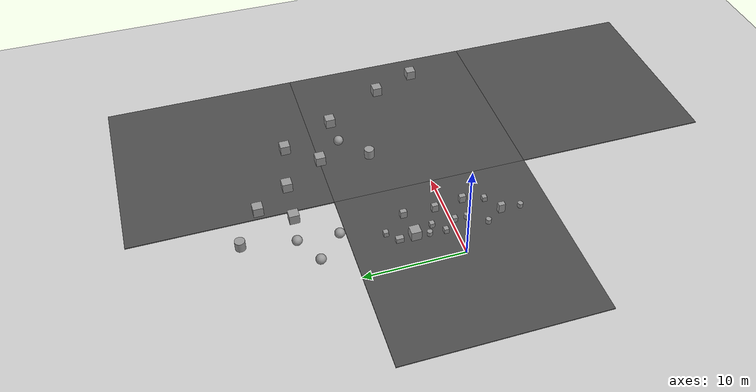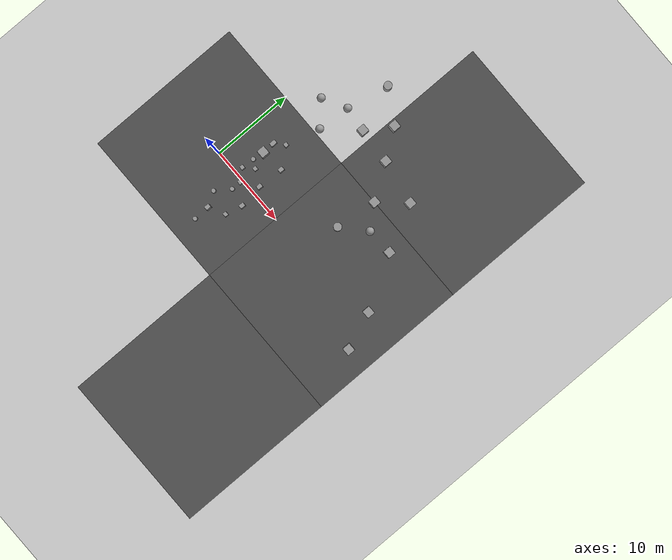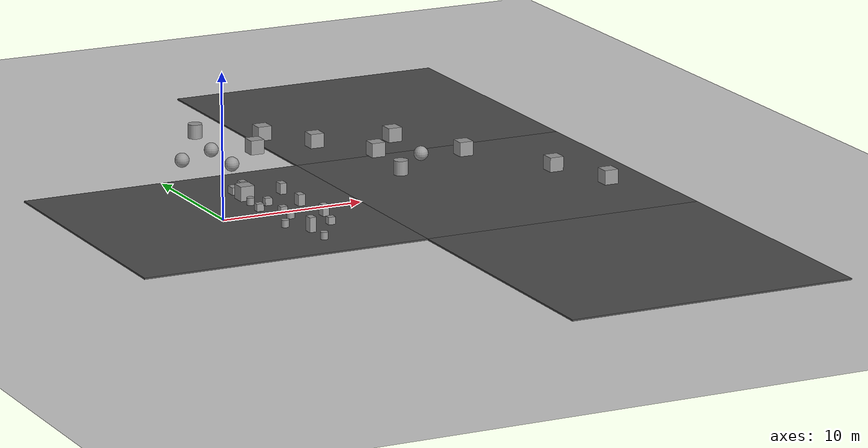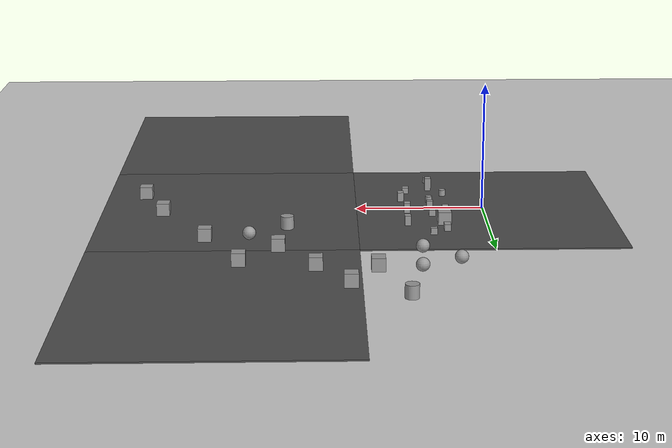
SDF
<sdf version="1.7">
 <world name="default">
  <model name="ground_plane">
   <static>1</static>
   <link name="link">
    <collision name="collision">
     <geometry><plane><normal>0 0 1</normal><size>100 100</size></plane></geometry>
     <surface>
      <contact><collide_bitmask>65535</collide_bitmask></contact>
      <friction><ode><mu>100</mu><mu2>50</mu2></ode></friction>
     </surface>
    </collision>
    <visual name="visual">
     <cast_shadows>0</cast_shadows>
     <geometry><plane><normal>0 0 1</normal><size>100 100</size></plane></geometry>
     <material>
      <script><uri>file://media/materials/scripts/gazebo.material</uri><name>Gazebo/Grey</name></script>
     </material>
    </visual>
   </link>
  </model>
  <model name="asphalt_plane">
   <static>1</static>
   <link name="link">
    <collision name="collision"><geometry><box><size>20 20 0.1</size></box></geometry></collision>
    <visual name="visual">
     <cast_shadows>0</cast_shadows>
     <geometry><box><size>20 20 0.1</size></box></geometry>
     <material>
      <script>
       <uri>model://asphalt_plane/materials/scripts</uri>
       <uri>model://asphalt_plane/materials/textures</uri>
       <name>vrc/asphalt</name>
      </script>
     </material>
    </visual>
   </link>
  </model>
  <model name="asphalt_plane_clone">
   <static>1</static>
   <link name="link">
    <collision name="collision"><geometry><box><size>20 20 0.1</size></box></geometry></collision>
    <visual name="visual">
     <cast_shadows>0</cast_shadows>
     <geometry><box><size>20 20 0.1</size></box></geometry>
     <material>
      <script>
       <uri>model://asphalt_plane/materials/scripts</uri>
       <uri>model://asphalt_plane/materials/textures</uri>
       <name>vrc/asphalt</name>
      </script>
     </material>
    </visual>
   </link>
   <pose>20 0 0 0 -0 0</pose>
  </model>
  <model name="asphalt_plane_clone_0">
   <static>1</static>
   <link name="link">
    <collision name="collision"><geometry><box><size>20 20 0.1</size></box></geometry></collision>
    <visual name="visual">
     <cast_shadows>0</cast_shadows>
     <geometry><box><size>20 20 0.1</size></box></geometry>
     <material>
      <script>
       <uri>model://asphalt_plane/materials/scripts</uri>
       <uri>model://asphalt_plane/materials/textures</uri>
       <name>vrc/asphalt</name>
      </script>
     </material>
    </visual>
   </link>
   <pose>20 -20 0 0 -0 0</pose>
  </model>
  <model name="asphalt_plane_clone_6">
   <static>1</static>
   <link name="link">
    <collision name="collision"><geometry><box><size>20 20 0.1</size></box></geometry></collision>
    <visual name="visual">
     <cast_shadows>0</cast_shadows>
     <geometry><box><size>20 20 0.1</size></box></geometry>
     <material>
      <script>
       <uri>model://asphalt_plane/materials/scripts</uri>
       <uri>model://asphalt_plane/materials/textures</uri>
       <name>vrc/asphalt</name>
      </script>
     </material>
    </visual>
   </link>
   <pose>20 20 0 0 -0 0</pose>
  </model>
  <model name="unit_box">
   <pose>3.3249 3.92529 0.55 0 -0 0</pose>
   <link name="link">
    <inertial>
     <mass>1</mass>
     <inertia>
      <ixx>0.166667</ixx>
      <ixy>0</ixy>
      <ixz>0</ixz>
      <iyy>0.166667</iyy>
      <iyz>0</iyz>
      <izz>0.166667</izz>
     </inertia>
    </inertial>
    <collision name="collision"><geometry><box><size>1 1 1</size></box></geometry></collision>
    <visual name="visual">
     <geometry><box><size>1 1 1</size></box></geometry>
     <material>
      <script><name>Gazebo/Grey</name><uri>file://media/materials/scripts/gazebo.material</uri></script>
     </material>
    </visual>
   </link>
  </model>
  <model name="unit_box_0">
   <pose>4.32444 6.49188 0.301356 0 -0 1e-06</pose>
   <link name="link">
    <inertial>
     <mass>1</mass>
     <inertia>
      <ixx>0.166667</ixx>
      <ixy>0</ixy>
      <ixz>0</ixz>
      <iyy>0.166667</iyy>
      <iyz>0</iyz>
      <izz>0.166667</izz>
     </inertia>
    </inertial>
    <collision name="collision">
     <geometry><box><size>0.495294 0.467832 0.502712</size></box></geometry>
    </collision>
    <visual name="visual">
     <geometry><box><size>0.495294 0.467832 0.502712</size></box></geometry>
     <material>
      <script><name>Gazebo/Grey</name><uri>file://media/materials/scripts/gazebo.material</uri></script>
     </material>
    </visual>
   </link>
  </model>
  <model name="unit_box_0_clone">
   <pose>3.22245 5.47551 0.301351 -1.2e-05 0 2e-06</pose>
   <link name="link">
    <inertial>
     <mass>1</mass>
     <inertia>
      <ixx>0.166667</ixx>
      <ixy>0</ixy>
      <ixz>0</ixz>
      <iyy>0.166667</iyy>
      <iyz>0</iyz>
      <izz>0.166667</izz>
     </inertia>
    </inertial>
    <collision name="collision">
     <geometry><box><size>0.495294 0.766084 0.502712</size></box></geometry>
    </collision>
    <visual name="visual">
     <geometry><box><size>0.495294 0.766084 0.502712</size></box></geometry>
     <material>
      <script><name>Gazebo/Grey</name><uri>file://media/materials/scripts/gazebo.material</uri></script>
     </material>
    </visual>
   </link>
  </model>
  <model name="unit_box_0_clone_2">
   <pose>3.02414 0.969262 0.301356 0 -0 1e-06</pose>
   <link name="link">
    <inertial>
     <mass>1</mass>
     <inertia>
      <ixx>0.166667</ixx>
      <ixy>0</ixy>
      <ixz>0</ixz>
      <iyy>0.166667</iyy>
      <iyz>0</iyz>
      <izz>0.166667</izz>
     </inertia>
    </inertial>
    <collision name="collision">
     <geometry><box><size>0.495294 0.467832 0.502712</size></box></geometry>
    </collision>
    <visual name="visual">
     <geometry><box><size>0.495294 0.467832 0.502712</size></box></geometry>
     <material>
      <script><name>Gazebo/Grey</name><uri>file://media/materials/scripts/gazebo.material</uri></script>
     </material>
    </visual>
   </link>
  </model>
  <model name="unit_box_0_clone_3">
   <pose>4.15818 -0.316674 0.301356 0 -0 1e-06</pose>
   <link name="link">
    <inertial>
     <mass>1</mass>
     <inertia>
      <ixx>0.166667</ixx>
      <ixy>0</ixy>
      <ixz>0</ixz>
      <iyy>0.166667</iyy>
      <iyz>0</iyz>
      <izz>0.166667</izz>
     </inertia>
    </inertial>
    <collision name="collision">
     <geometry><box><size>0.495294 0.467832 0.502712</size></box></geometry>
    </collision>
    <visual name="visual">
     <geometry><box><size>0.495294 0.467832 0.502712</size></box></geometry>
     <material>
      <script><name>Gazebo/Grey</name><uri>file://media/materials/scripts/gazebo.material</uri></script>
     </material>
    </visual>
   </link>
  </model>
  <model name="unit_box_0_clone_4">
   <pose>4.11232 2.00992 0.301356 0 -0 1e-06</pose>
   <link name="link">
    <inertial>
     <mass>1</mass>
     <inertia>
      <ixx>0.166667</ixx>
      <ixy>0</ixy>
      <ixz>0</ixz>
      <iyy>0.166667</iyy>
      <iyz>0</iyz>
      <izz>0.166667</izz>
     </inertia>
    </inertial>
    <collision name="collision">
     <geometry><box><size>0.495294 0.467832 0.502712</size></box></geometry>
    </collision>
    <visual name="visual">
     <geometry><box><size>0.495294 0.467832 0.502712</size></box></geometry>
     <material>
      <script><name>Gazebo/Grey</name><uri>file://media/materials/scripts/gazebo.material</uri></script>
     </material>
    </visual>
   </link>
  </model>
  <model name="unit_cylinder_clone_4">
   <pose>3.12569 2.54543 0.294825 0 -0 0.000307</pose>
   <link name="link">
    <inertial>
     <mass>1</mass>
     <inertia><ixx>0.145833</ixx><ixy>0</ixy><ixz>0</ixz><iyy>0.145833</iyy><iyz>0</iyz><izz>0.125</izz></inertia>
    </inertial>
    <collision name="collision">
     <geometry><cylinder><radius>0.264047</radius><length>0.48967</length></cylinder></geometry>
    </collision>
    <visual name="visual">
     <geometry><cylinder><radius>0.264047</radius><length>0.48967</length></cylinder></geometry>
     <material>
      <script><name>Gazebo/Grey</name><uri>file://media/materials/scripts/gazebo.material</uri></script>
     </material>
    </visual>
   </link>
  </model>
  <model name="unit_cylinder_clone_5">
   <pose>4.1551 -1.53168 0.294836 -2e-06 2e-06 0.000272</pose>
   <link name="link">
    <inertial>
     <mass>1</mass>
     <inertia><ixx>0.145833</ixx><ixy>0</ixy><ixz>0</ixz><iyy>0.145833</iyy><iyz>0</iyz><izz>0.125</izz></inertia>
    </inertial>
    <collision name="collision">
     <geometry><cylinder><radius>0.264047</radius><length>0.48967</length></cylinder></geometry>
    </collision>
    <visual name="visual">
     <geometry><cylinder><radius>0.264047</radius><length>0.48967</length></cylinder></geometry>
     <material>
      <script><name>Gazebo/Grey</name><uri>file://media/materials/scripts/gazebo.material</uri></script>
     </material>
    </visual>
   </link>
  </model>
  <model name="unit_cylinder_clone_6">
   <pose>2.93725 -3.29398 0.294835 0 -0 0.000255</pose>
   <link name="link">
    <inertial>
     <mass>1</mass>
     <inertia><ixx>0.145833</ixx><ixy>0</ixy><ixz>0</ixz><iyy>0.145833</iyy><iyz>0</iyz><izz>0.125</izz></inertia>
    </inertial>
    <collision name="collision">
     <geometry><cylinder><radius>0.264047</radius><length>0.48967</length></cylinder></geometry>
    </collision>
    <visual name="visual">
     <geometry><cylinder><radius>0.264047</radius><length>0.48967</length></cylinder></geometry>
     <material>
      <script><name>Gazebo/Grey</name><uri>file://media/materials/scripts/gazebo.material</uri></script>
     </material>
    </visual>
   </link>
  </model>
  <model name="unit_cylinder_clone_15">
   <pose>4 -7.00001 0.294826 1e-06 -1e-06 0.000277</pose>
   <link name="link">
    <inertial>
     <mass>1</mass>
     <inertia><ixx>0.145833</ixx><ixy>0</ixy><ixz>0</ixz><iyy>0.145833</iyy><iyz>0</iyz><izz>0.125</izz></inertia>
    </inertial>
    <collision name="collision">
     <geometry><cylinder><radius>0.264047</radius><length>0.48967</length></cylinder></geometry>
    </collision>
    <visual name="visual">
     <geometry><cylinder><radius>0.264047</radius><length>0.48967</length></cylinder></geometry>
     <material>
      <script><name>Gazebo/Grey</name><uri>file://media/materials/scripts/gazebo.material</uri></script>
     </material>
    </visual>
   </link>
  </model>
  <model name="unit_box_0_clone_1_clone_2">
   <pose>5.89538 -3.99875 0.301356 0 -0 1e-06</pose>
   <link name="link">
    <inertial>
     <mass>1</mass>
     <inertia>
      <ixx>0.166667</ixx>
      <ixy>0</ixy>
      <ixz>0</ixz>
      <iyy>0.166667</iyy>
      <iyz>0</iyz>
      <izz>0.166667</izz>
     </inertia>
    </inertial>
    <collision name="collision">
     <geometry><box><size>0.495294 0.467832 0.502712</size></box></geometry>
    </collision>
    <visual name="visual">
     <geometry><box><size>0.495294 0.467832 0.502712</size></box></geometry>
     <material>
      <script><name>Gazebo/Grey</name><uri>file://media/materials/scripts/gazebo.material</uri></script>
     </material>
    </visual>
   </link>
  </model>
  <model name="unit_box_3_clone_1">
   <pose>6.15547 4.18849 0.422713 0 -0 0</pose>
   <link name="link">
    <inertial>
     <mass>1</mass>
     <inertia>
      <ixx>0.166667</ixx>
      <ixy>0</ixy>
      <ixz>0</ixz>
      <iyy>0.166667</iyy>
      <iyz>0</iyz>
      <izz>0.166667</izz>
     </inertia>
    </inertial>
    <collision name="collision">
     <geometry><box><size>0.473217 0.637104 0.745427</size></box></geometry>
    </collision>
    <visual name="visual">
     <geometry><box><size>0.473217 0.637104 0.745427</size></box></geometry>
     <material>
      <script><name>Gazebo/Grey</name><uri>file://media/materials/scripts/gazebo.material</uri></script>
     </material>
    </visual>
   </link>
  </model>
  <model name="unit_box_3_clone_3">
   <pose>4 -5 0.55 0 -0 0</pose>
   <link name="link">
    <inertial>
     <mass>1</mass>
     <inertia>
      <ixx>0.166667</ixx>
      <ixy>0</ixy>
      <ixz>0</ixz>
      <iyy>0.166667</iyy>
      <iyz>0</iyz>
      <izz>0.166667</izz>
     </inertia>
    </inertial>
    <collision name="collision"><geometry><box><size>0.473217 0.637104 1</size></box></geometry></collision>
    <visual name="visual">
     <geometry><box><size>0.473217 0.637104 1</size></box></geometry>
     <material>
      <script><name>Gazebo/Grey</name><uri>file://media/materials/scripts/gazebo.material</uri></script>
     </material>
    </visual>
   </link>
  </model>
  <model name="unit_box_3_clone_4">
   <pose>6.40553 -1.89878 0.427812 0 0 -1.8e-05</pose>
   <link name="link">
    <inertial>
     <mass>1</mass>
     <inertia>
      <ixx>0.166667</ixx>
      <ixy>0</ixy>
      <ixz>0</ixz>
      <iyy>0.166667</iyy>
      <iyz>0</iyz>
      <izz>0.166667</izz>
     </inertia>
    </inertial>
    <collision name="collision">
     <geometry><box><size>0.473217 0.637104 0.755624</size></box></geometry>
    </collision>
    <visual name="visual">
     <geometry><box><size>0.473217 0.637104 0.755624</size></box></geometry>
     <material>
      <script><name>Gazebo/Grey</name><uri>file://media/materials/scripts/gazebo.material</uri></script>
     </material>
    </visual>
   </link>
  </model>
  <model name="unit_box_3_clone_5">
   <pose>6.02964 1.04247 0.43567 0 -0 0</pose>
   <link name="link">
    <inertial>
     <mass>1</mass>
     <inertia>
      <ixx>0.166667</ixx>
      <ixy>0</ixy>
      <ixz>0</ixz>
      <iyy>0.166667</iyy>
      <iyz>0</iyz>
      <izz>0.166667</izz>
     </inertia>
    </inertial>
    <collision name="collision"><geometry><box><size>0.473217 0.637104 0.77134</size></box></geometry></collision>
    <visual name="visual">
     <geometry><box><size>0.473217 0.637104 0.77134</size></box></geometry>
     <material>
      <script><name>Gazebo/Grey</name><uri>file://media/materials/scripts/gazebo.material</uri></script>
     </material>
    </visual>
   </link>
  </model>
  <model name="unit_box_4">
   <pose>15.9542 9.93416 0.549994 7e-06 -0 0</pose>
   <link name="link">
    <inertial>
     <mass>1</mass>
     <inertia>
      <ixx>0.166667</ixx>
      <ixy>0</ixy>
      <ixz>0</ixz>
      <iyy>0.166667</iyy>
      <iyz>0</iyz>
      <izz>0.166667</izz>
     </inertia>
    </inertial>
    <collision name="collision"><geometry><box><size>1 1 1</size></box></geometry></collision>
    <visual name="visual">
     <geometry><box><size>1 1 1</size></box></geometry>
     <material>
      <script><name>Gazebo/Grey</name><uri>file://media/materials/scripts/gazebo.material</uri></script>
     </material>
    </visual>
   </link>
  </model>
  <model name="unit_sphere">
   <link name="link">
    <inertial>
     <mass>1.41372</mass>
     <inertia>
      <ixx>0.141372</ixx>
      <ixy>0</ixy>
      <ixz>0</ixz>
      <iyy>0.141372</iyy>
      <iyz>0</iyz>
      <izz>0.141372</izz>
     </inertia>
    </inertial>
    <visual name="visual">
     <geometry><sphere><radius>0.5</radius></sphere></geometry>
     <material>
      <script><name>Gazebo/Grey</name><uri>file://media/materials/scripts/gazebo.material</uri></script>
      <shader type="pixel"><normal_map>__default__</normal_map></shader>
     </material>
    </visual>
    <collision name="collision">
     <geometry><sphere><radius>0.5</radius></sphere></geometry>
     <surface>
      <friction>
       <ode><mu>1</mu><mu2>1</mu2><fdir1>0 0 0</fdir1><slip1>0</slip1><slip2>0</slip2></ode>
       <torsional>
        <coefficient>1</coefficient>
        <patch_radius>0</patch_radius>
        <surface_radius>0</surface_radius>
        <use_patch_radius>1</use_patch_radius>
        <ode><slip>0</slip></ode>
       </torsional>
      </friction>
      <bounce><restitution_coefficient>0</restitution_coefficient><threshold>1e+06</threshold></bounce>
      <contact>
       <collide_without_contact>0</collide_without_contact>
       <collide_without_contact_bitmask>1</collide_without_contact_bitmask>
       <collide_bitmask>1</collide_bitmask>
       <ode>
        <soft_cfm>0</soft_cfm>
        <soft_erp>0.2</soft_erp>
        <kp>1e+13</kp>
        <kd>1</kd>
        <max_vel>0.01</max_vel>
        <min_depth>0</min_depth>
       </ode>
       <bullet>
        <split_impulse>1</split_impulse>
        <split_impulse_penetration_threshold>-0.01</split_impulse_penetration_threshold>
        <soft_cfm>0</soft_cfm>
        <soft_erp>0.2</soft_erp>
        <kp>1e+13</kp>
        <kd>1</kd>
       </bullet>
      </contact>
     </surface>
    </collision>
   </link>
   <static>0</static>
   <pose>5.71347 14.6249 0.55 0 -0 0</pose>
  </model>
  <model name="unit_sphere_clone">
   <link name="link">
    <inertial>
     <mass>1.41372</mass>
     <inertia>
      <ixx>0.141372</ixx>
      <ixy>0</ixy>
      <ixz>0</ixz>
      <iyy>0.141372</iyy>
      <iyz>0</iyz>
      <izz>0.141372</izz>
     </inertia>
    </inertial>
    <visual name="visual">
     <geometry><sphere><radius>0.5</radius></sphere></geometry>
     <material>
      <script><name>Gazebo/Grey</name><uri>file://media/materials/scripts/gazebo.material</uri></script>
      <shader type="pixel"><normal_map>__default__</normal_map></shader>
     </material>
    </visual>
    <collision name="collision">
     <geometry><sphere><radius>0.5</radius></sphere></geometry>
     <surface>
      <friction>
       <ode><mu>1</mu><mu2>1</mu2><fdir1>0 0 0</fdir1><slip1>0</slip1><slip2>0</slip2></ode>
       <torsional>
        <coefficient>1</coefficient>
        <patch_radius>0</patch_radius>
        <surface_radius>0</surface_radius>
        <use_patch_radius>1</use_patch_radius>
        <ode><slip>0</slip></ode>
       </torsional>
      </friction>
      <bounce><restitution_coefficient>0</restitution_coefficient><threshold>1e+06</threshold></bounce>
      <contact>
       <collide_without_contact>0</collide_without_contact>
       <collide_without_contact_bitmask>1</collide_without_contact_bitmask>
       <collide_bitmask>1</collide_bitmask>
       <ode>
        <soft_cfm>0</soft_cfm>
        <soft_erp>0.2</soft_erp>
        <kp>1e+13</kp>
        <kd>1</kd>
        <max_vel>0.01</max_vel>
        <min_depth>0</min_depth>
       </ode>
       <bullet>
        <split_impulse>1</split_impulse>
        <split_impulse_penetration_threshold>-0.01</split_impulse_penetration_threshold>
        <soft_cfm>0</soft_cfm>
        <soft_erp>0.2</soft_erp>
        <kp>1e+13</kp>
        <kd>1</kd>
       </bullet>
      </contact>
     </surface>
    </collision>
   </link>
   <static>0</static>
   <pose>5.44361 10.6261 0.55 0 -0 0</pose>
  </model>
  <model name="unit_cylinder_0">
   <pose>15.381 4.88172 0.54999 -0 -0 -1e-06</pose>
   <link name="link">
    <inertial>
     <mass>1</mass>
     <inertia><ixx>0.145833</ixx><ixy>0</ixy><ixz>0</ixz><iyy>0.145833</iyy><iyz>0</iyz><izz>0.125</izz></inertia>
    </inertial>
    <collision name="collision">
     <geometry><cylinder><radius>0.5</radius><length>1</length></cylinder></geometry>
    </collision>
    <visual name="visual">
     <geometry><cylinder><radius>0.5</radius><length>1</length></cylinder></geometry>
     <material>
      <script><name>Gazebo/Grey</name><uri>file://media/materials/scripts/gazebo.material</uri></script>
     </material>
    </visual>
   </link>
  </model>
  <model name="unit_sphere_clone_0">
   <link name="link">
    <inertial>
     <mass>1.41372</mass>
     <inertia>
      <ixx>0.141372</ixx>
      <ixy>0</ixy>
      <ixz>0</ixz>
      <iyy>0.141372</iyy>
      <iyz>0</iyz>
      <izz>0.141372</izz>
     </inertia>
    </inertial>
    <visual name="visual">
     <geometry><sphere><radius>0.5</radius></sphere></geometry>
     <material>
      <script><name>Gazebo/Grey</name><uri>file://media/materials/scripts/gazebo.material</uri></script>
      <shader type="pixel"><normal_map>__default__</normal_map></shader>
     </material>
    </visual>
    <collision name="collision">
     <geometry><sphere><radius>0.5</radius></sphere></geometry>
     <surface>
      <friction>
       <ode><mu>1</mu><mu2>1</mu2><fdir1>0 0 0</fdir1><slip1>0</slip1><slip2>0</slip2></ode>
       <torsional>
        <coefficient>1</coefficient>
        <patch_radius>0</patch_radius>
        <surface_radius>0</surface_radius>
        <use_patch_radius>1</use_patch_radius>
        <ode><slip>0</slip></ode>
       </torsional>
      </friction>
      <bounce><restitution_coefficient>0</restitution_coefficient><threshold>1e+06</threshold></bounce>
      <contact>
       <collide_without_contact>0</collide_without_contact>
       <collide_without_contact_bitmask>1</collide_without_contact_bitmask>
       <collide_bitmask>1</collide_bitmask>
       <ode>
        <soft_cfm>0</soft_cfm>
        <soft_erp>0.2</soft_erp>
        <kp>1e+13</kp>
        <kd>1</kd>
        <max_vel>0.01</max_vel>
        <min_depth>0</min_depth>
       </ode>
       <bullet>
        <split_impulse>1</split_impulse>
        <split_impulse_penetration_threshold>-0.01</split_impulse_penetration_threshold>
        <soft_cfm>0</soft_cfm>
        <soft_erp>0.2</soft_erp>
        <kp>1e+13</kp>
        <kd>1</kd>
       </bullet>
      </contact>
     </surface>
    </collision>
   </link>
   <static>0</static>
   <pose>2.83927 13.0704 0.55 0 -0 0</pose>
  </model>
  <model name="unit_box_4_clone">
   <pose>8.81735 14.2654 0.55 0 -0 0</pose>
   <link name="link">
    <inertial>
     <mass>1</mass>
     <inertia>
      <ixx>0.166667</ixx>
      <ixy>0</ixy>
      <ixz>0</ixz>
      <iyy>0.166667</iyy>
      <iyz>0</iyz>
      <izz>0.166667</izz>
     </inertia>
    </inertial>
    <collision name="collision"><geometry><box><size>1 1 1</size></box></geometry></collision>
    <visual name="visual">
     <geometry><box><size>1 1 1</size></box></geometry>
     <material>
      <script><name>Gazebo/Grey</name><uri>file://media/materials/scripts/gazebo.material</uri></script>
     </material>
    </visual>
   </link>
  </model>
  <model name="unit_cylinder_1">
   <pose>6.78698 19.7557 0.549995 1e-05 3e-06 -1.4e-05</pose>
   <link name="link">
    <inertial>
     <mass>1</mass>
     <inertia><ixx>0.145833</ixx><ixy>0</ixy><ixz>0</ixz><iyy>0.145833</iyy><iyz>0</iyz><izz>0.125</izz></inertia>
    </inertial>
    <collision name="collision">
     <geometry><cylinder><radius>0.5</radius><length>1</length></cylinder></geometry>
    </collision>
    <visual name="visual">
     <geometry><cylinder><radius>0.5</radius><length>1</length></cylinder></geometry>
     <material>
      <script><name>Gazebo/Grey</name><uri>file://media/materials/scripts/gazebo.material</uri></script>
     </material>
    </visual>
   </link>
  </model>
  <model name="unit_sphere_0">
   <pose>18.1703 7.41217 0.55 0 -0 0</pose>
   <link name="link">
    <inertial>
     <mass>1</mass>
     <inertia><ixx>0.1</ixx><ixy>0</ixy><ixz>0</ixz><iyy>0.1</iyy><iyz>0</iyz><izz>0.1</izz></inertia>
    </inertial>
    <collision name="collision"><geometry><sphere><radius>0.5</radius></sphere></geometry></collision>
    <visual name="visual">
     <geometry><sphere><radius>0.5</radius></sphere></geometry>
     <material>
      <script><name>Gazebo/Grey</name><uri>file://media/materials/scripts/gazebo.material</uri></script>
     </material>
    </visual>
   </link>
  </model>
  <model name="unit_box_6">
   <pose>25.1293 1.23622 0.550001 -3e-06 -0 0</pose>
   <link name="link">
    <inertial>
     <mass>1</mass>
     <inertia>
      <ixx>0.166667</ixx>
      <ixy>0</ixy>
      <ixz>0</ixz>
      <iyy>0.166667</iyy>
      <iyz>0</iyz>
      <izz>0.166667</izz>
     </inertia>
    </inertial>
    <collision name="collision"><geometry><box><size>1 1 1</size></box></geometry></collision>
    <visual name="visual">
     <geometry><box><size>1 1 1</size></box></geometry>
     <material>
      <script><name>Gazebo/Grey</name><uri>file://media/materials/scripts/gazebo.material</uri></script>
     </material>
    </visual>
   </link>
  </model>
  <model name="unit_box_4_clone_clone">
   <pose>13.2189 13.9745 0.55 0 -0 0</pose>
   <link name="link">
    <inertial>
     <mass>1</mass>
     <inertia>
      <ixx>0.166667</ixx>
      <ixy>0</ixy>
      <ixz>0</ixz>
      <iyy>0.166667</iyy>
      <iyz>0</iyz>
      <izz>0.166667</izz>
     </inertia>
    </inertial>
    <collision name="collision"><geometry><box><size>1 1 1</size></box></geometry></collision>
    <visual name="visual">
     <geometry><box><size>1 1 1</size></box></geometry>
     <material>
      <script><name>Gazebo/Grey</name><uri>file://media/materials/scripts/gazebo.material</uri></script>
     </material>
    </visual>
   </link>
  </model>
  <model name="unit_box_4_clone_clone_0">
   <pose>10.7891 17.3515 0.55 0 -0 0</pose>
   <link name="link">
    <inertial>
     <mass>1</mass>
     <inertia>
      <ixx>0.166667</ixx>
      <ixy>0</ixy>
      <ixz>0</ixz>
      <iyy>0.166667</iyy>
      <iyz>0</iyz>
      <izz>0.166667</izz>
     </inertia>
    </inertial>
    <collision name="collision"><geometry><box><size>1 1 1</size></box></geometry></collision>
    <visual name="visual">
     <geometry><box><size>1 1 1</size></box></geometry>
     <material>
      <script><name>Gazebo/Grey</name><uri>file://media/materials/scripts/gazebo.material</uri></script>
     </material>
    </visual>
   </link>
  </model>
  <model name="unit_box_4_clone_clone_1">
   <pose>21.4596 7.50868 0.55 0 -0 0</pose>
   <link name="link">
    <inertial>
     <mass>1</mass>
     <inertia>
      <ixx>0.166667</ixx>
      <ixy>0</ixy>
      <ixz>0</ixz>
      <iyy>0.166667</iyy>
      <iyz>0</iyz>
      <izz>0.166667</izz>
     </inertia>
    </inertial>
    <collision name="collision"><geometry><box><size>1 1 1</size></box></geometry></collision>
    <visual name="visual">
     <geometry><box><size>1 1 1</size></box></geometry>
     <material>
      <script><name>Gazebo/Grey</name><uri>file://media/materials/scripts/gazebo.material</uri></script>
     </material>
    </visual>
   </link>
  </model>
  <model name="unit_box_4_clone_clone_2">
   <pose>18.6991 12.9908 0.55 0 -0 0</pose>
   <link name="link">
    <inertial>
     <mass>1</mass>
     <inertia>
      <ixx>0.166667</ixx>
      <ixy>0</ixy>
      <ixz>0</ixz>
      <iyy>0.166667</iyy>
      <iyz>0</iyz>
      <izz>0.166667</izz>
     </inertia>
    </inertial>
    <collision name="collision"><geometry><box><size>1 1 1</size></box></geometry></collision>
    <visual name="visual">
     <geometry><box><size>1 1 1</size></box></geometry>
     <material>
      <script><name>Gazebo/Grey</name><uri>file://media/materials/scripts/gazebo.material</uri></script>
     </material>
    </visual>
   </link>
  </model>
  <model name="unit_box_4_clone_clone_3">
   <pose>26.913 -3.25656 0.55 0 -0 0</pose>
   <link name="link">
    <inertial>
     <mass>1</mass>
     <inertia>
      <ixx>0.166667</ixx>
      <ixy>0</ixy>
      <ixz>0</ixz>
      <iyy>0.166667</iyy>
      <iyz>0</iyz>
      <izz>0.166667</izz>
     </inertia>
    </inertial>
    <collision name="collision"><geometry><box><size>1 1 1</size></box></geometry></collision>
    <visual name="visual">
     <geometry><box><size>1 1 1</size></box></geometry>
     <material>
      <script><name>Gazebo/Grey</name><uri>file://media/materials/scripts/gazebo.material</uri></script>
     </material>
    </visual>
   </link>
  </model>
 </world>
</sdf>
